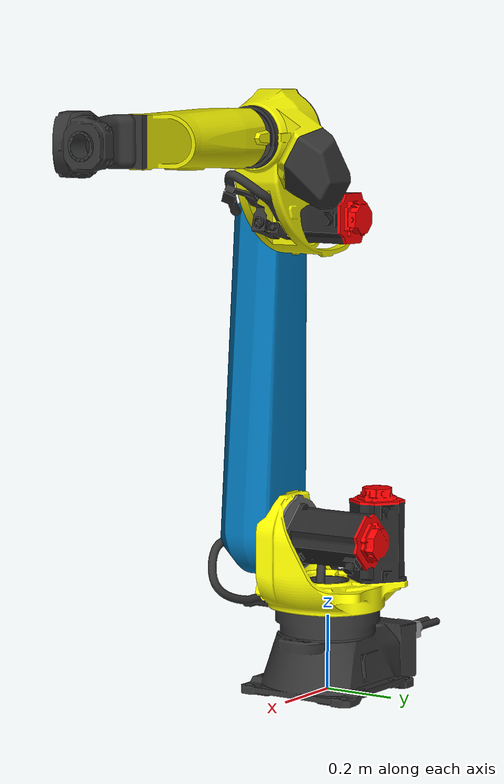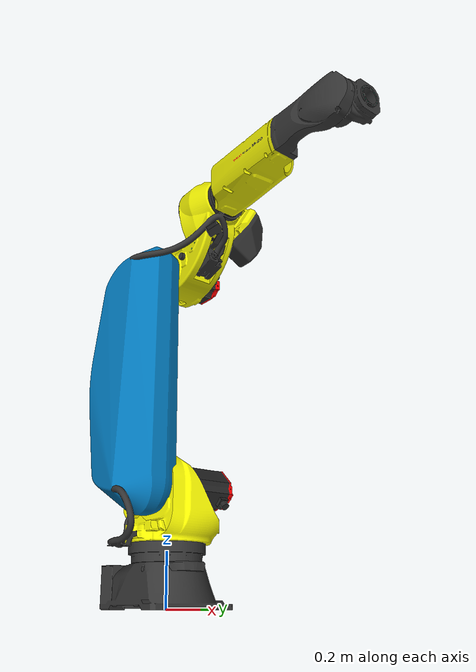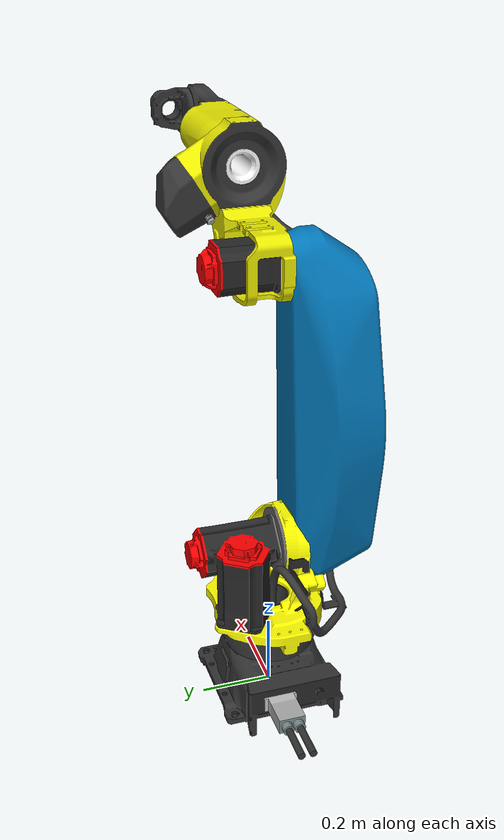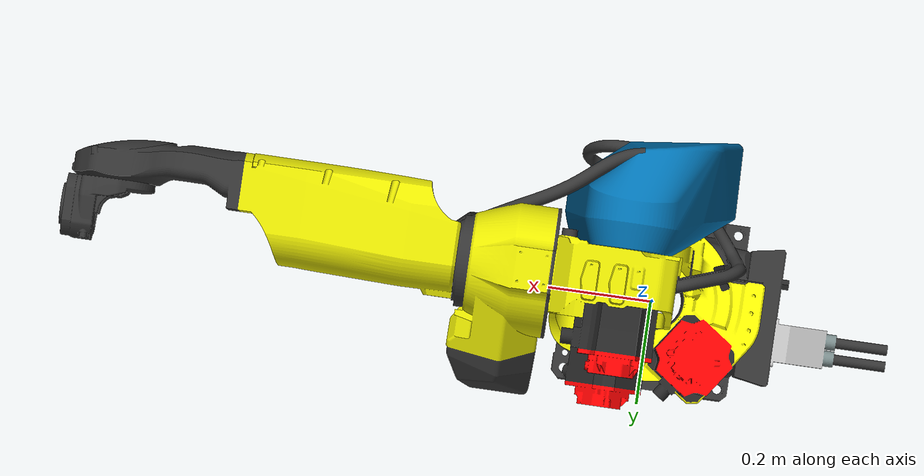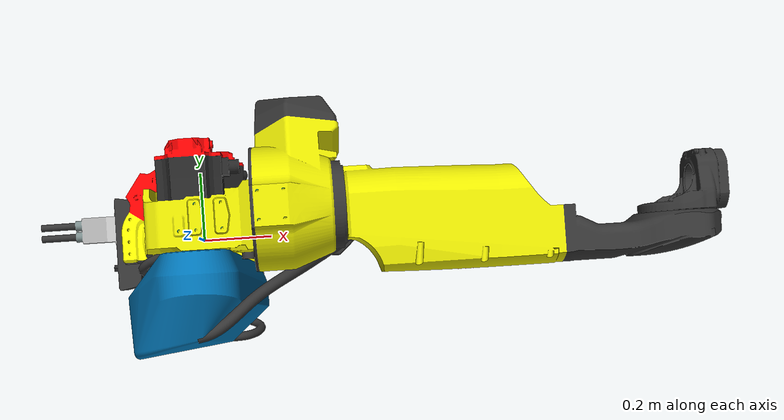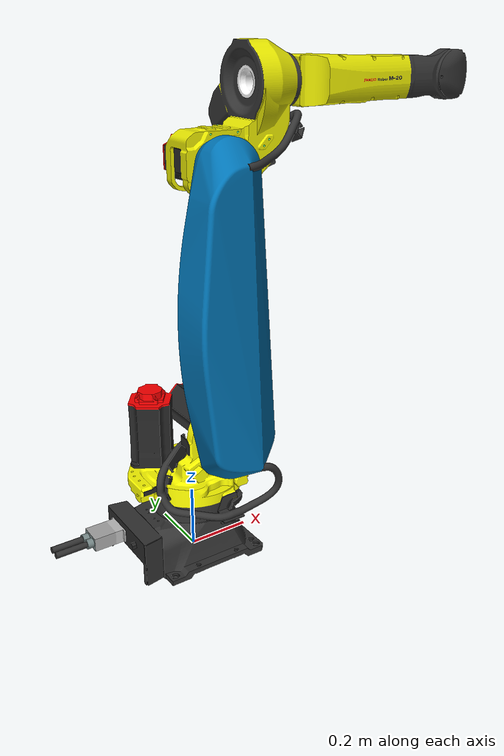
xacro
<?xml version="1.0" ?>
<robot name="m20_25-18d" xmlns:xacro="http://wiki.ros.org/xacro">
  <xacro:include
    filename="$(find fanuc_m20_description)/urdf/m20_25-18d_urdf_macro.xacro"
  />

  <link name="world" />
  <link name="ee_link" />
  <xacro:m20_25-18d parent="world" child="ee_link">
    <origin xyz="0 0 0" rpy="0 0 0" />
  </xacro:m20_25-18d>
</robot>

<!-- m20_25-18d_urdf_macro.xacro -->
<!--
SPDX-FileCopyrightText: 2025, FANUC America Corporation
SPDX-FileCopyrightText: 2025, FANUC CORPORATION
SPDX-License-Identifier: Apache-2.0
-->
<!-- URDF for M-20/25-18D (M-20iD/25) -->
<robot xmlns:xacro="http://wiki.ros.org/xacro">
  <xacro:macro
    name="m20_25-18d"
    params="prefix=''
            parent
            *origin
            child"
  >

    <xacro:property name="j1_lower_limit" value="${radians(-185)}" />
    <xacro:property name="j2_lower_limit" value="${radians(-100)}" />
    <xacro:property name="j3_lower_limit" value="${radians(-90)}" />
    <xacro:property name="j4_lower_limit" value="${radians(-200)}" />
    <xacro:property name="j5_lower_limit" value="${radians(-180)}" />
    <xacro:property name="j6_lower_limit" value="${radians(-450)}" />

    <xacro:property name="j1_upper_limit" value="${radians( 185)}" />
    <xacro:property name="j2_upper_limit" value="${radians( 160)}" />
    <xacro:property name="j3_upper_limit" value="${radians( 220)}" />
    <xacro:property name="j4_upper_limit" value="${radians( 200)}" />
    <xacro:property name="j5_upper_limit" value="${radians( 180)}" />
    <xacro:property name="j6_upper_limit" value="${radians( 450)}" />

    <xacro:property name="j1_effort_limit" value=" 7000" />
    <xacro:property name="j2_effort_limit" value=" 8000" />
    <xacro:property name="j3_effort_limit" value=" 4000" />
    <xacro:property name="j4_effort_limit" value=" 300" />
    <xacro:property name="j5_effort_limit" value=" 300" />
    <xacro:property name="j6_effort_limit" value=" 200" />

    <xacro:property name="j1_velocity_limit" value="${radians( 210)}" />
    <xacro:property name="j2_velocity_limit" value="${radians( 210)}" />
    <xacro:property name="j3_velocity_limit" value="${radians( 265)}" />
    <xacro:property name="j4_velocity_limit" value="${radians( 420)}" />
    <xacro:property name="j5_velocity_limit" value="${radians( 420)}" />
    <xacro:property name="j6_velocity_limit" value="${radians( 720)}" />

    <!-- links -->
    <link name="${prefix}base_link">
      <visual>
        <origin xyz="0 0 0" rpy="0 0 0" />
        <geometry>
          <mesh
            filename="package://fanuc_m20_description/meshes/m20_25-18d/visual/base.dae"
          />
        </geometry>
      </visual>
      <collision>
        <origin xyz="0 0 0" rpy="0 0 0" />
        <geometry>
          <mesh
            filename="package://fanuc_m20_description/meshes/m20_25-18d/collision/base.stl"
          />
        </geometry>
      </collision>
      <inertial>
        <mass value=" 60" />
        <origin xyz="-.003  .0008  .1" />
        <inertia
          ixx=" .8"
          ixy="-.002"
          ixz="-.0006"
          iyy=" .8"
          iyz="-.005"
          izz=" .9"
        />
      </inertial>
    </link>

    <link name="${prefix}J1_link">
      <visual>
        <origin xyz="0 0 0" rpy="0 0 0" />
        <geometry>
          <mesh
            filename="package://fanuc_m20_description/meshes/m20_25-18d/visual/j1.dae"
          />
        </geometry>
      </visual>
      <collision>
        <origin xyz="0 0 0" rpy="0 0 0" />
        <geometry>
          <mesh
            filename="package://fanuc_m20_description/meshes/m20_25-18d/collision/j1.stl"
          />
        </geometry>
      </collision>
      <inertial>
        <mass value=" 90" />
        <origin xyz=" .03 -.004 -.05" />
        <inertia
          ixx=" 1"
          ixy="-.3"
          ixz=" .09"
          iyy=" 1"
          iyz="-.04"
          izz=" 2"
        />
      </inertial>
    </link>

    <link name="${prefix}J2_link">
      <visual>
        <origin xyz="0 0 0" rpy="0 0 0" />
        <geometry>
          <mesh
            filename="package://fanuc_m20_description/meshes/m20_25-18d/visual/j2.dae"
          />
        </geometry>
      </visual>
      <collision>
        <origin xyz="0 0 0" rpy="0 0 0" />
        <geometry>
          <mesh
            filename="package://fanuc_m20_description/meshes/m20_25-18d/collision/j2.stl"
          />
        </geometry>
      </collision>
      <inertial>
        <mass value=" 50" />
        <origin xyz="-.04 -.2  .4" />
        <inertia
          ixx=" 5"
          ixy=" .04"
          ixz=" .04"
          iyy=" 6"
          iyz=" .4"
          izz=" .4"
        />
      </inertial>
    </link>

    <link name="${prefix}J3_link">
      <visual>
        <origin xyz="0 0 0" rpy="0 0 0" />
        <geometry>
          <mesh
            filename="package://fanuc_m20_description/meshes/m20_25-18d/visual/j3.dae"
          />
        </geometry>
      </visual>
      <collision>
        <origin xyz="0 0 0" rpy="0 0 0" />
        <geometry>
          <mesh
            filename="package://fanuc_m20_description/meshes/m20_25-18d/collision/j3.stl"
          />
        </geometry>
      </collision>
      <inertial>
        <mass value=" 40" />
        <origin xyz=" .1  .02  .1" />
        <inertia
          ixx=" .6"
          ixy=" .01"
          ixz=" .3"
          iyy=" .8"
          iyz=" .005"
          izz=" .6"
        />
      </inertial>
    </link>

    <link name="${prefix}J4_link">
      <visual>
        <origin xyz="0 0 0" rpy="0 0 0" />
        <geometry>
          <mesh
            filename="package://fanuc_m20_description/meshes/m20_25-18d/visual/j4.dae"
          />
        </geometry>
      </visual>
      <collision>
        <origin xyz="0 0 0" rpy="0 0 0" />
        <geometry>
          <mesh
            filename="package://fanuc_m20_description/meshes/m20_25-18d/collision/j4.stl"
          />
        </geometry>
      </collision>
      <inertial>
        <mass value=" 20" />
        <origin xyz=" .6 -.06 -.002" />
        <inertia
          ixx=" .06"
          ixy="-.07"
          ixz=" .008"
          iyy=" .6"
          iyz=" .00002"
          izz=" .6"
        />
      </inertial>
    </link>

    <link name="${prefix}J5_link">
      <visual>
        <origin xyz="0 0 0" rpy="0 0 0" />
        <geometry>
          <mesh
            filename="package://fanuc_m20_description/meshes/m20_25-18d/visual/j5.dae"
          />
        </geometry>
      </visual>
      <collision>
        <origin xyz="0 0 0" rpy="0 0 0" />
        <geometry>
          <mesh
            filename="package://fanuc_m20_description/meshes/m20_25-18d/collision/j5.stl"
          />
        </geometry>
      </collision>
      <inertial>
        <mass value=" 4" />
        <origin xyz=" .02 -.04 -.0001" />
        <inertia
          ixx=" .01"
          ixy=" .003"
          ixz="-.00001"
          iyy=" .01"
          iyz="-.00004"
          izz=" .01"
        />
      </inertial>
    </link>

    <link name="${prefix}J6_link">
      <visual>
        <origin xyz="0 0 0" rpy="0 0 0" />
        <geometry>
          <mesh
            filename="package://fanuc_m20_description/meshes/m20_25-18d/visual/j6.dae"
          />
        </geometry>
      </visual>
      <collision>
        <origin xyz="0 0 0" rpy="0 0 0" />
        <geometry>
          <mesh
            filename="package://fanuc_m20_description/meshes/m20_25-18d/collision/j6.stl"
          />
        </geometry>
      </collision>
      <inertial>
        <mass value=" 1" />
        <origin xyz=" .06  0  0" />
        <inertia
          ixx=" .001"
          ixy=" 0"
          ixz=" 0"
          iyy=" .0008"
          iyz=" .0000004"
          izz=" .0008"
        />
      </inertial>
    </link>

    <!-- joints -->
    <joint name="${prefix}J1" type="revolute">
      <origin xyz=" 0  0  .425" rpy="0 0 0" />
      <parent link="${prefix}base_link" />
      <child link="${prefix}J1_link" />
      <axis xyz=" 0  0  1" />
      <limit
        lower="${j1_lower_limit}"
        upper="${j1_upper_limit}"
        effort="${j1_effort_limit}"
        velocity="${j1_velocity_limit}"
      />
    </joint>

    <joint name="${prefix}J2" type="revolute">
      <origin xyz=" .075  0  0" rpy="0 0 0" />
      <parent link="${prefix}J1_link" />
      <child link="${prefix}J2_link" />
      <axis xyz=" 0  1  0" />
      <limit
        lower="${j2_lower_limit}"
        upper="${j2_upper_limit}"
        effort="${j2_effort_limit}"
        velocity="${j2_velocity_limit}"
      />
    </joint>

    <joint name="${prefix}J3" type="revolute">
      <origin xyz=" 0  0  .84" rpy="0 0 0" />
      <parent link="${prefix}J2_link" />
      <child link="${prefix}J3_link" />
      <axis xyz=" 0 -1  0" />
      <limit
        lower="${j3_lower_limit}"
        upper="${j3_upper_limit}"
        effort="${j3_effort_limit}"
        velocity="${j3_velocity_limit}"
      />
    </joint>

    <joint name="${prefix}J4" type="revolute">
      <origin xyz=" 0  0  .215" rpy="0 0 0" />
      <parent link="${prefix}J3_link" />
      <child link="${prefix}J4_link" />
      <axis xyz="-1  0  0" />
      <limit
        lower="${j4_lower_limit}"
        upper="${j4_upper_limit}"
        effort="${j4_effort_limit}"
        velocity="${j4_velocity_limit}"
      />
    </joint>

    <joint name="${prefix}J5" type="revolute">
      <origin xyz=" .89  0  0" rpy="0 0 0" />
      <parent link="${prefix}J4_link" />
      <child link="${prefix}J5_link" />
      <axis xyz=" 0 -1  0" />
      <limit
        lower="${j5_lower_limit}"
        upper="${j5_upper_limit}"
        effort="${j5_effort_limit}"
        velocity="${j5_velocity_limit}"
      />
    </joint>

    <joint name="${prefix}J6" type="revolute">
      <origin xyz=" 0  0  0" rpy="0 0 0" />
      <parent link="${prefix}J5_link" />
      <child link="${prefix}J6_link" />
      <axis xyz="-1  0  0" />
      <limit
        lower="${j6_lower_limit}"
        upper="${j6_upper_limit}"
        effort="${j6_effort_limit}"
        velocity="${j6_velocity_limit}"
      />
    </joint>

    <!-- world coords -->
    <link name="${prefix}wbase" />
    <joint name="${prefix}base_link-wbase" type="fixed">
      <origin xyz=" 0  0  .425" rpy="0 0 0" />
      <parent link="${prefix}base_link" />
      <child link="${prefix}wbase" />
    </joint>

    <!-- flange coords -->
    <link name="${prefix}flange" />
    <joint name="${prefix}J6-flange" type="fixed">
      <origin xyz=" .09  0  0" rpy="0 0 0" />
      <parent link="${prefix}J6_link" />
      <child link="${prefix}flange" />
    </joint>

    <!-- Attach to parent -->
    <joint name="${prefix}base_joint" type="fixed">
      <xacro:insert_block name="origin" />
      <parent link="${parent}" />
      <child link="${prefix}base_link" />
    </joint>

    <!-- Attach child -->
    <joint name="${prefix}child_joint" type="fixed">
      <origin xyz="0 0 0" rpy="0 0 0" />
      <parent link="${prefix}flange" />
      <child link="${child}" />
    </joint>
  </xacro:macro>
</robot>
